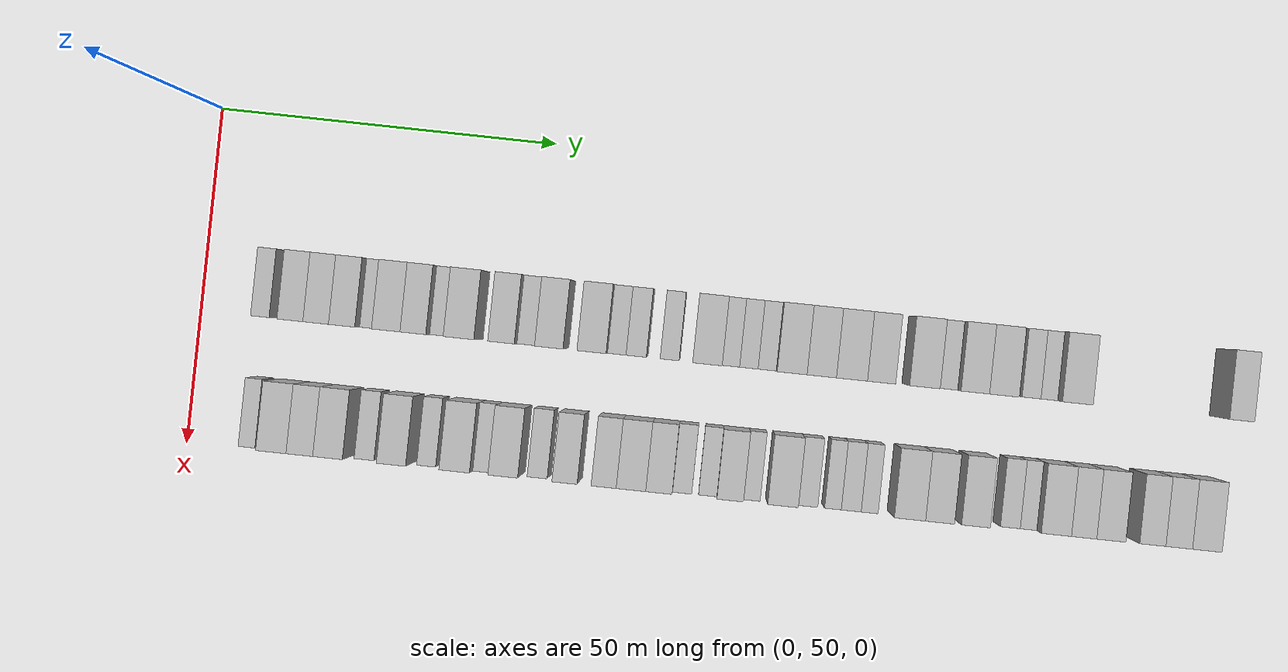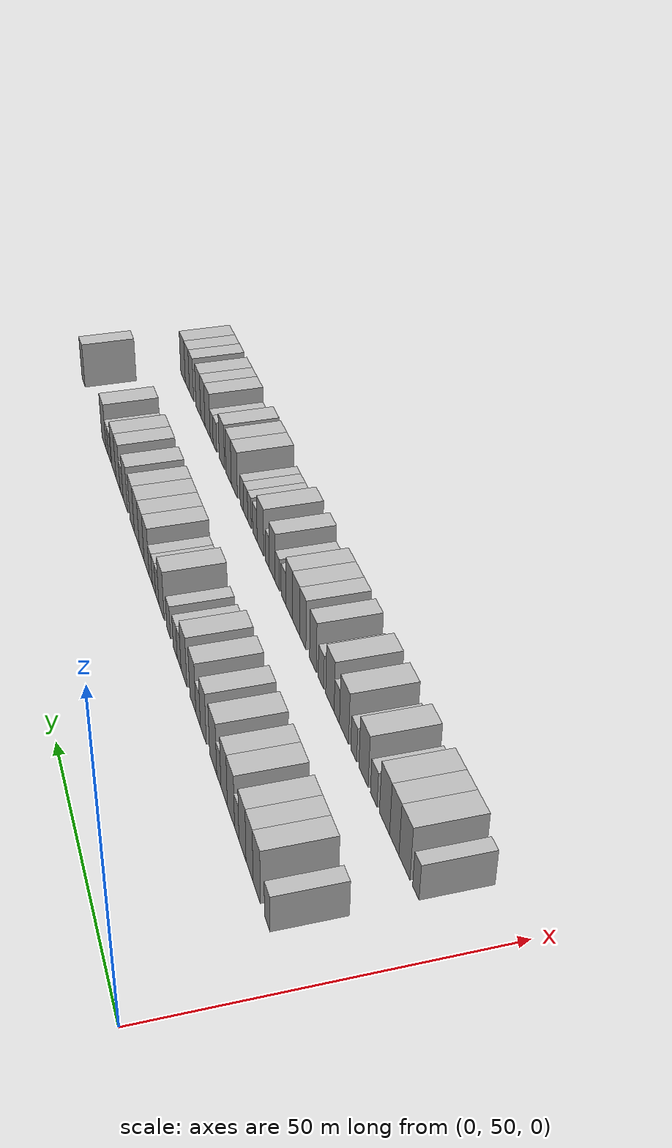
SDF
<sdf version="1.6">
 <world name="default">
  <model name="building_69">
   <static>1</static>
   <pose>25.0000 60.5563 0 0.000000 0.000000 0.000000</pose>
   <link name="link">
    <pose>0 0 3.00 0 0 0</pose>
    <collision name="collision"><geometry><box><size>10.0000 2.7041 6.0000</size></box></geometry></collision>
    <visual name="visual">
     <cast_shadows>0</cast_shadows>
     <geometry><box><size>10.0000 2.7041 6.0000</size></box></geometry>
     <material>
      <script>
       <uri>model://HANNAS_wall/materials/scripts</uri>
       <uri>model://HANNAS_wall/materials/textures</uri>
       <name>vrc/HANNAS_wall</name>
      </script>
     </material>
    </visual>
   </link>
  </model>
  <model name="building_70">
   <static>1</static>
   <pose>25.0000 65.7661 0 0.000000 0.000000 0.000000</pose>
   <link name="link">
    <pose>0 0 4.50 0 0 0</pose>
    <collision name="collision"><geometry><box><size>10.0000 3.7156 9.0000</size></box></geometry></collision>
    <visual name="visual">
     <cast_shadows>0</cast_shadows>
     <geometry><box><size>10.0000 3.7156 9.0000</size></box></geometry>
     <material>
      <script>
       <uri>model://HANNAS_wall/materials/scripts</uri>
       <uri>model://HANNAS_wall/materials/textures</uri>
       <name>vrc/HANNAS_wall</name>
      </script>
     </material>
    </visual>
   </link>
  </model>
  <model name="building_71">
   <static>1</static>
   <pose>25.0000 69.4646 0 0.000000 0.000000 0.000000</pose>
   <link name="link">
    <pose>0 0 4.50 0 0 0</pose>
    <collision name="collision"><geometry><box><size>10.0000 3.6813 9.0000</size></box></geometry></collision>
    <visual name="visual">
     <cast_shadows>0</cast_shadows>
     <geometry><box><size>10.0000 3.6813 9.0000</size></box></geometry>
     <material>
      <script>
       <uri>model://HANNAS_wall/materials/scripts</uri>
       <uri>model://HANNAS_wall/materials/textures</uri>
       <name>vrc/HANNAS_wall</name>
      </script>
     </material>
    </visual>
   </link>
  </model>
  <model name="building_72">
   <static>1</static>
   <pose>25.0000 73.1962 0 0.000000 0.000000 0.000000</pose>
   <link name="link">
    <pose>0 0 4.50 0 0 0</pose>
    <collision name="collision"><geometry><box><size>10.0000 3.7819 9.0000</size></box></geometry></collision>
    <visual name="visual">
     <cast_shadows>0</cast_shadows>
     <geometry><box><size>10.0000 3.7819 9.0000</size></box></geometry>
     <material>
      <script>
       <uri>model://HANNAS_wall/materials/scripts</uri>
       <uri>model://HANNAS_wall/materials/textures</uri>
       <name>vrc/HANNAS_wall</name>
      </script>
     </material>
    </visual>
   </link>
  </model>
  <model name="building_73">
   <static>1</static>
   <pose>25.0000 76.2872 0 0.000000 0.000000 0.000000</pose>
   <link name="link">
    <pose>0 0 3.00 0 0 0</pose>
    <collision name="collision"><geometry><box><size>10.0000 2.4002 6.0000</size></box></geometry></collision>
    <visual name="visual">
     <cast_shadows>0</cast_shadows>
     <geometry><box><size>10.0000 2.4002 6.0000</size></box></geometry>
     <material>
      <script>
       <uri>model://HANNAS_wall/materials/scripts</uri>
       <uri>model://HANNAS_wall/materials/textures</uri>
       <name>vrc/HANNAS_wall</name>
      </script>
     </material>
    </visual>
   </link>
  </model>
  <model name="building_74">
   <static>1</static>
   <pose>25.0000 79.5328 0 0.000000 0.000000 0.000000</pose>
   <link name="link">
    <pose>0 0 4.50 0 0 0</pose>
    <collision name="collision"><geometry><box><size>10.0000 4.0908 9.0000</size></box></geometry></collision>
    <visual name="visual">
     <cast_shadows>0</cast_shadows>
     <geometry><box><size>10.0000 4.0908 9.0000</size></box></geometry>
     <material>
      <script>
       <uri>model://HANNAS_wall/materials/scripts</uri>
       <uri>model://HANNAS_wall/materials/textures</uri>
       <name>vrc/HANNAS_wall</name>
      </script>
     </material>
    </visual>
   </link>
  </model>
  <model name="building_75">
   <static>1</static>
   <pose>25.0000 83.4289 0 0.000000 0.000000 0.000000</pose>
   <link name="link">
    <pose>0 0 4.50 0 0 0</pose>
    <collision name="collision"><geometry><box><size>10.0000 3.7014 9.0000</size></box></geometry></collision>
    <visual name="visual">
     <cast_shadows>0</cast_shadows>
     <geometry><box><size>10.0000 3.7014 9.0000</size></box></geometry>
     <material>
      <script>
       <uri>model://HANNAS_wall/materials/scripts</uri>
       <uri>model://HANNAS_wall/materials/textures</uri>
       <name>vrc/HANNAS_wall</name>
      </script>
     </material>
    </visual>
   </link>
  </model>
  <model name="building_76">
   <static>1</static>
   <pose>25.0000 86.5332 0 0.000000 0.000000 0.000000</pose>
   <link name="link">
    <pose>0 0 3.00 0 0 0</pose>
    <collision name="collision"><geometry><box><size>10.0000 2.5073 6.0000</size></box></geometry></collision>
    <visual name="visual">
     <cast_shadows>0</cast_shadows>
     <geometry><box><size>10.0000 2.5073 6.0000</size></box></geometry>
     <material>
      <script>
       <uri>model://HANNAS_wall/materials/scripts</uri>
       <uri>model://HANNAS_wall/materials/textures</uri>
       <name>vrc/HANNAS_wall</name>
      </script>
     </material>
    </visual>
   </link>
  </model>
  <model name="building_77">
   <static>1</static>
   <pose>25.0000 89.9837 0 0.000000 0.000000 0.000000</pose>
   <link name="link">
    <pose>0 0 4.50 0 0 0</pose>
    <collision name="collision"><geometry><box><size>10.0000 4.3937 9.0000</size></box></geometry></collision>
    <visual name="visual">
     <cast_shadows>0</cast_shadows>
     <geometry><box><size>10.0000 4.3937 9.0000</size></box></geometry>
     <material>
      <script>
       <uri>model://HANNAS_wall/materials/scripts</uri>
       <uri>model://HANNAS_wall/materials/textures</uri>
       <name>vrc/HANNAS_wall</name>
      </script>
     </material>
    </visual>
   </link>
  </model>
  <model name="building_78">
   <static>1</static>
   <pose>25.0000 96.0907 0 0.000000 0.000000 0.000000</pose>
   <link name="link">
    <pose>0 0 4.50 0 0 0</pose>
    <collision name="collision"><geometry><box><size>10.0000 3.8204 9.0000</size></box></geometry></collision>
    <visual name="visual">
     <cast_shadows>0</cast_shadows>
     <geometry><box><size>10.0000 3.8204 9.0000</size></box></geometry>
     <material>
      <script>
       <uri>model://HANNAS_wall/materials/scripts</uri>
       <uri>model://HANNAS_wall/materials/textures</uri>
       <name>vrc/HANNAS_wall</name>
      </script>
     </material>
    </visual>
   </link>
  </model>
  <model name="building_79">
   <static>1</static>
   <pose>25.0000 99.4555 0 0.000000 0.000000 0.000000</pose>
   <link name="link">
    <pose>0 0 3.00 0 0 0</pose>
    <collision name="collision"><geometry><box><size>10.0000 2.9091 6.0000</size></box></geometry></collision>
    <visual name="visual">
     <cast_shadows>0</cast_shadows>
     <geometry><box><size>10.0000 2.9091 6.0000</size></box></geometry>
     <material>
      <script>
       <uri>model://HANNAS_wall/materials/scripts</uri>
       <uri>model://HANNAS_wall/materials/textures</uri>
       <name>vrc/HANNAS_wall</name>
      </script>
     </material>
    </visual>
   </link>
  </model>
  <model name="building_80">
   <static>1</static>
   <pose>25.0000 102.9547 0 0.000000 0.000000 0.000000</pose>
   <link name="link">
    <pose>0 0 4.50 0 0 0</pose>
    <collision name="collision"><geometry><box><size>10.0000 4.0892 9.0000</size></box></geometry></collision>
    <visual name="visual">
     <cast_shadows>0</cast_shadows>
     <geometry><box><size>10.0000 4.0892 9.0000</size></box></geometry>
     <material>
      <script>
       <uri>model://HANNAS_wall/materials/scripts</uri>
       <uri>model://HANNAS_wall/materials/textures</uri>
       <name>vrc/HANNAS_wall</name>
      </script>
     </material>
    </visual>
   </link>
  </model>
  <model name="building_81">
   <static>1</static>
   <pose>25.0000 109.0985 0 0.000000 0.000000 0.000000</pose>
   <link name="link">
    <pose>0 0 4.50 0 0 0</pose>
    <collision name="collision"><geometry><box><size>10.0000 4.1983 9.0000</size></box></geometry></collision>
    <visual name="visual">
     <cast_shadows>0</cast_shadows>
     <geometry><box><size>10.0000 4.1983 9.0000</size></box></geometry>
     <material>
      <script>
       <uri>model://HANNAS_wall/materials/scripts</uri>
       <uri>model://HANNAS_wall/materials/textures</uri>
       <name>vrc/HANNAS_wall</name>
      </script>
     </material>
    </visual>
   </link>
  </model>
  <model name="building_82">
   <static>1</static>
   <pose>25.0000 112.5447 0 0.000000 0.000000 0.000000</pose>
   <link name="link">
    <pose>0 0 3.00 0 0 0</pose>
    <collision name="collision"><geometry><box><size>10.0000 2.6942 6.0000</size></box></geometry></collision>
    <visual name="visual">
     <cast_shadows>0</cast_shadows>
     <geometry><box><size>10.0000 2.6942 6.0000</size></box></geometry>
     <material>
      <script>
       <uri>model://HANNAS_wall/materials/scripts</uri>
       <uri>model://HANNAS_wall/materials/textures</uri>
       <name>vrc/HANNAS_wall</name>
      </script>
     </material>
    </visual>
   </link>
  </model>
  <model name="building_83">
   <static>1</static>
   <pose>25.0000 115.3727 0 0.000000 0.000000 0.000000</pose>
   <link name="link">
    <pose>0 0 3.00 0 0 0</pose>
    <collision name="collision"><geometry><box><size>10.0000 2.9618 6.0000</size></box></geometry></collision>
    <visual name="visual">
     <cast_shadows>0</cast_shadows>
     <geometry><box><size>10.0000 2.9618 6.0000</size></box></geometry>
     <material>
      <script>
       <uri>model://HANNAS_wall/materials/scripts</uri>
       <uri>model://HANNAS_wall/materials/textures</uri>
       <name>vrc/HANNAS_wall</name>
      </script>
     </material>
    </visual>
   </link>
  </model>
  <model name="building_84">
   <static>1</static>
   <pose>25.0000 120.2411 0 0.000000 0.000000 0.000000</pose>
   <link name="link">
    <pose>0 0 3.00 0 0 0</pose>
    <collision name="collision"><geometry><box><size>10.0000 2.7749 6.0000</size></box></geometry></collision>
    <visual name="visual">
     <cast_shadows>0</cast_shadows>
     <geometry><box><size>10.0000 2.7749 6.0000</size></box></geometry>
     <material>
      <script>
       <uri>model://HANNAS_wall/materials/scripts</uri>
       <uri>model://HANNAS_wall/materials/textures</uri>
       <name>vrc/HANNAS_wall</name>
      </script>
     </material>
    </visual>
   </link>
  </model>
  <model name="building_85">
   <static>1</static>
   <pose>25.0000 125.7526 0 0.000000 0.000000 0.000000</pose>
   <link name="link">
    <pose>0 0 4.50 0 0 0</pose>
    <collision name="collision"><geometry><box><size>10.0000 4.2481 9.0000</size></box></geometry></collision>
    <visual name="visual">
     <cast_shadows>0</cast_shadows>
     <geometry><box><size>10.0000 4.2481 9.0000</size></box></geometry>
     <material>
      <script>
       <uri>model://HANNAS_wall/materials/scripts</uri>
       <uri>model://HANNAS_wall/materials/textures</uri>
       <name>vrc/HANNAS_wall</name>
      </script>
     </material>
    </visual>
   </link>
  </model>
  <model name="building_86">
   <static>1</static>
   <pose>25.0000 129.1577 0 0.000000 0.000000 0.000000</pose>
   <link name="link">
    <pose>0 0 3.00 0 0 0</pose>
    <collision name="collision"><geometry><box><size>10.0000 2.5620 6.0000</size></box></geometry></collision>
    <visual name="visual">
     <cast_shadows>0</cast_shadows>
     <geometry><box><size>10.0000 2.5620 6.0000</size></box></geometry>
     <material>
      <script>
       <uri>model://HANNAS_wall/materials/scripts</uri>
       <uri>model://HANNAS_wall/materials/textures</uri>
       <name>vrc/HANNAS_wall</name>
      </script>
     </material>
    </visual>
   </link>
  </model>
  <model name="building_87">
   <static>1</static>
   <pose>25.0000 131.7862 0 0.000000 0.000000 0.000000</pose>
   <link name="link">
    <pose>0 0 3.00 0 0 0</pose>
    <collision name="collision"><geometry><box><size>10.0000 2.6950 6.0000</size></box></geometry></collision>
    <visual name="visual">
     <cast_shadows>0</cast_shadows>
     <geometry><box><size>10.0000 2.6950 6.0000</size></box></geometry>
     <material>
      <script>
       <uri>model://HANNAS_wall/materials/scripts</uri>
       <uri>model://HANNAS_wall/materials/textures</uri>
       <name>vrc/HANNAS_wall</name>
      </script>
     </material>
    </visual>
   </link>
  </model>
  <model name="building_88">
   <static>1</static>
   <pose>25.0000 134.4603 0 0.000000 0.000000 0.000000</pose>
   <link name="link">
    <pose>0 0 3.00 0 0 0</pose>
    <collision name="collision"><geometry><box><size>10.0000 2.6532 6.0000</size></box></geometry></collision>
    <visual name="visual">
     <cast_shadows>0</cast_shadows>
     <geometry><box><size>10.0000 2.6532 6.0000</size></box></geometry>
     <material>
      <script>
       <uri>model://HANNAS_wall/materials/scripts</uri>
       <uri>model://HANNAS_wall/materials/textures</uri>
       <name>vrc/HANNAS_wall</name>
      </script>
     </material>
    </visual>
   </link>
  </model>
  <model name="building_89">
   <static>1</static>
   <pose>25.0000 137.9294 0 0.000000 0.000000 0.000000</pose>
   <link name="link">
    <pose>0 0 4.50 0 0 0</pose>
    <collision name="collision"><geometry><box><size>10.0000 4.2849 9.0000</size></box></geometry></collision>
    <visual name="visual">
     <cast_shadows>0</cast_shadows>
     <geometry><box><size>10.0000 4.2849 9.0000</size></box></geometry>
     <material>
      <script>
       <uri>model://HANNAS_wall/materials/scripts</uri>
       <uri>model://HANNAS_wall/materials/textures</uri>
       <name>vrc/HANNAS_wall</name>
      </script>
     </material>
    </visual>
   </link>
  </model>
  <model name="building_90">
   <static>1</static>
   <pose>25.0000 142.1839 0 0.000000 0.000000 0.000000</pose>
   <link name="link">
    <pose>0 0 4.50 0 0 0</pose>
    <collision name="collision"><geometry><box><size>10.0000 4.2241 9.0000</size></box></geometry></collision>
    <visual name="visual">
     <cast_shadows>0</cast_shadows>
     <geometry><box><size>10.0000 4.2241 9.0000</size></box></geometry>
     <material>
      <script>
       <uri>model://HANNAS_wall/materials/scripts</uri>
       <uri>model://HANNAS_wall/materials/textures</uri>
       <name>vrc/HANNAS_wall</name>
      </script>
     </material>
    </visual>
   </link>
  </model>
  <model name="building_91">
   <static>1</static>
   <pose>25.0000 146.5268 0 0.000000 0.000000 0.000000</pose>
   <link name="link">
    <pose>0 0 4.50 0 0 0</pose>
    <collision name="collision"><geometry><box><size>10.0000 4.4617 9.0000</size></box></geometry></collision>
    <visual name="visual">
     <cast_shadows>0</cast_shadows>
     <geometry><box><size>10.0000 4.4617 9.0000</size></box></geometry>
     <material>
      <script>
       <uri>model://HANNAS_wall/materials/scripts</uri>
       <uri>model://HANNAS_wall/materials/textures</uri>
       <name>vrc/HANNAS_wall</name>
      </script>
     </material>
    </visual>
   </link>
  </model>
  <model name="building_92">
   <static>1</static>
   <pose>25.0000 150.7841 0 0.000000 0.000000 0.000000</pose>
   <link name="link">
    <pose>0 0 4.50 0 0 0</pose>
    <collision name="collision"><geometry><box><size>10.0000 4.0531 9.0000</size></box></geometry></collision>
    <visual name="visual">
     <cast_shadows>0</cast_shadows>
     <geometry><box><size>10.0000 4.0531 9.0000</size></box></geometry>
     <material>
      <script>
       <uri>model://HANNAS_wall/materials/scripts</uri>
       <uri>model://HANNAS_wall/materials/textures</uri>
       <name>vrc/HANNAS_wall</name>
      </script>
     </material>
    </visual>
   </link>
  </model>
  <model name="building_93">
   <static>1</static>
   <pose>25.0000 157.0103 0 0.000000 0.000000 0.000000</pose>
   <link name="link">
    <pose>0 0 4.50 0 0 0</pose>
    <collision name="collision"><geometry><box><size>10.0000 4.3993 9.0000</size></box></geometry></collision>
    <visual name="visual">
     <cast_shadows>0</cast_shadows>
     <geometry><box><size>10.0000 4.3993 9.0000</size></box></geometry>
     <material>
      <script>
       <uri>model://HANNAS_wall/materials/scripts</uri>
       <uri>model://HANNAS_wall/materials/textures</uri>
       <name>vrc/HANNAS_wall</name>
      </script>
     </material>
    </visual>
   </link>
  </model>
  <model name="building_94">
   <static>1</static>
   <pose>25.0000 160.7069 0 0.000000 0.000000 0.000000</pose>
   <link name="link">
    <pose>0 0 3.00 0 0 0</pose>
    <collision name="collision"><geometry><box><size>10.0000 2.9938 6.0000</size></box></geometry></collision>
    <visual name="visual">
     <cast_shadows>0</cast_shadows>
     <geometry><box><size>10.0000 2.9938 6.0000</size></box></geometry>
     <material>
      <script>
       <uri>model://HANNAS_wall/materials/scripts</uri>
       <uri>model://HANNAS_wall/materials/textures</uri>
       <name>vrc/HANNAS_wall</name>
      </script>
     </material>
    </visual>
   </link>
  </model>
  <model name="building_95">
   <static>1</static>
   <pose>25.0000 164.2515 0 0.000000 0.000000 0.000000</pose>
   <link name="link">
    <pose>0 0 4.50 0 0 0</pose>
    <collision name="collision"><geometry><box><size>10.0000 4.0954 9.0000</size></box></geometry></collision>
    <visual name="visual">
     <cast_shadows>0</cast_shadows>
     <geometry><box><size>10.0000 4.0954 9.0000</size></box></geometry>
     <material>
      <script>
       <uri>model://HANNAS_wall/materials/scripts</uri>
       <uri>model://HANNAS_wall/materials/textures</uri>
       <name>vrc/HANNAS_wall</name>
      </script>
     </material>
    </visual>
   </link>
  </model>
  <model name="building_96">
   <static>1</static>
   <pose>25.0000 168.4405 0 0.000000 0.000000 0.000000</pose>
   <link name="link">
    <pose>0 0 4.50 0 0 0</pose>
    <collision name="collision"><geometry><box><size>10.0000 4.2827 9.0000</size></box></geometry></collision>
    <visual name="visual">
     <cast_shadows>0</cast_shadows>
     <geometry><box><size>10.0000 4.2827 9.0000</size></box></geometry>
     <material>
      <script>
       <uri>model://HANNAS_wall/materials/scripts</uri>
       <uri>model://HANNAS_wall/materials/textures</uri>
       <name>vrc/HANNAS_wall</name>
      </script>
     </material>
    </visual>
   </link>
  </model>
  <model name="building_97">
   <static>1</static>
   <pose>25.0000 172.9582 0 0.000000 0.000000 0.000000</pose>
   <link name="link">
    <pose>0 0 3.00 0 0 0</pose>
    <collision name="collision"><geometry><box><size>10.0000 2.7528 6.0000</size></box></geometry></collision>
    <visual name="visual">
     <cast_shadows>0</cast_shadows>
     <geometry><box><size>10.0000 2.7528 6.0000</size></box></geometry>
     <material>
      <script>
       <uri>model://HANNAS_wall/materials/scripts</uri>
       <uri>model://HANNAS_wall/materials/textures</uri>
       <name>vrc/HANNAS_wall</name>
      </script>
     </material>
    </visual>
   </link>
  </model>
  <model name="building_98">
   <static>1</static>
   <pose>25.0000 175.5542 0 0.000000 0.000000 0.000000</pose>
   <link name="link">
    <pose>0 0 3.00 0 0 0</pose>
    <collision name="collision"><geometry><box><size>10.0000 2.4391 6.0000</size></box></geometry></collision>
    <visual name="visual">
     <cast_shadows>0</cast_shadows>
     <geometry><box><size>10.0000 2.4391 6.0000</size></box></geometry>
     <material>
      <script>
       <uri>model://HANNAS_wall/materials/scripts</uri>
       <uri>model://HANNAS_wall/materials/textures</uri>
       <name>vrc/HANNAS_wall</name>
      </script>
     </material>
    </visual>
   </link>
  </model>
  <model name="building_99">
   <static>1</static>
   <pose>25.0000 178.9804 0 0.000000 0.000000 0.000000</pose>
   <link name="link">
    <pose>0 0 4.50 0 0 0</pose>
    <collision name="collision"><geometry><box><size>10.0000 4.4134 9.0000</size></box></geometry></collision>
    <visual name="visual">
     <cast_shadows>0</cast_shadows>
     <geometry><box><size>10.0000 4.4134 9.0000</size></box></geometry>
     <material>
      <script>
       <uri>model://HANNAS_wall/materials/scripts</uri>
       <uri>model://HANNAS_wall/materials/textures</uri>
       <name>vrc/HANNAS_wall</name>
      </script>
     </material>
    </visual>
   </link>
  </model>
  <model name="building_100">
   <static>1</static>
   <pose>25.0000 202.5988 0 0.000000 0.000000 0.000000</pose>
   <link name="link">
    <pose>0 0 4.50 0 0 0</pose>
    <collision name="collision"><geometry><box><size>10.0000 3.6078 9.0000</size></box></geometry></collision>
    <visual name="visual">
     <cast_shadows>0</cast_shadows>
     <geometry><box><size>10.0000 3.6078 9.0000</size></box></geometry>
     <material>
      <script>
       <uri>model://HANNAS_wall/materials/scripts</uri>
       <uri>model://HANNAS_wall/materials/textures</uri>
       <name>vrc/HANNAS_wall</name>
      </script>
     </material>
    </visual>
   </link>
  </model>
  <model name="building_167">
   <static>1</static>
   <pose>44.0000 60.6185 0 0.000000 0.000000 0.000000</pose>
   <link name="link">
    <pose>0 0 3.00 0 0 0</pose>
    <collision name="collision"><geometry><box><size>10.0000 2.4474 6.0000</size></box></geometry></collision>
    <visual name="visual">
     <cast_shadows>0</cast_shadows>
     <geometry><box><size>10.0000 2.4474 6.0000</size></box></geometry>
     <material>
      <script>
       <uri>model://HANNAS_wall/materials/scripts</uri>
       <uri>model://HANNAS_wall/materials/textures</uri>
       <name>vrc/HANNAS_wall</name>
      </script>
     </material>
    </visual>
   </link>
  </model>
  <model name="building_168">
   <static>1</static>
   <pose>44.0000 65.0229 0 0.000000 0.000000 0.000000</pose>
   <link name="link">
    <pose>0 0 4.50 0 0 0</pose>
    <collision name="collision"><geometry><box><size>10.0000 4.3615 9.0000</size></box></geometry></collision>
    <visual name="visual">
     <cast_shadows>0</cast_shadows>
     <geometry><box><size>10.0000 4.3615 9.0000</size></box></geometry>
     <material>
      <script>
       <uri>model://HANNAS_wall/materials/scripts</uri>
       <uri>model://HANNAS_wall/materials/textures</uri>
       <name>vrc/HANNAS_wall</name>
      </script>
     </material>
    </visual>
   </link>
  </model>
  <model name="building_169">
   <static>1</static>
   <pose>44.0000 69.1203 0 0.000000 0.000000 0.000000</pose>
   <link name="link">
    <pose>0 0 4.50 0 0 0</pose>
    <collision name="collision"><geometry><box><size>10.0000 3.8331 9.0000</size></box></geometry></collision>
    <visual name="visual">
     <cast_shadows>0</cast_shadows>
     <geometry><box><size>10.0000 3.8331 9.0000</size></box></geometry>
     <material>
      <script>
       <uri>model://HANNAS_wall/materials/scripts</uri>
       <uri>model://HANNAS_wall/materials/textures</uri>
       <name>vrc/HANNAS_wall</name>
      </script>
     </material>
    </visual>
   </link>
  </model>
  <model name="building_170">
   <static>1</static>
   <pose>44.0000 73.1661 0 0.000000 0.000000 0.000000</pose>
   <link name="link">
    <pose>0 0 4.50 0 0 0</pose>
    <collision name="collision"><geometry><box><size>10.0000 4.2587 9.0000</size></box></geometry></collision>
    <visual name="visual">
     <cast_shadows>0</cast_shadows>
     <geometry><box><size>10.0000 4.2587 9.0000</size></box></geometry>
     <material>
      <script>
       <uri>model://HANNAS_wall/materials/scripts</uri>
       <uri>model://HANNAS_wall/materials/textures</uri>
       <name>vrc/HANNAS_wall</name>
      </script>
     </material>
    </visual>
   </link>
  </model>
  <model name="building_171">
   <static>1</static>
   <pose>44.0000 77.7386 0 0.000000 0.000000 0.000000</pose>
   <link name="link">
    <pose>0 0 3.00 0 0 0</pose>
    <collision name="collision"><geometry><box><size>10.0000 2.8862 6.0000</size></box></geometry></collision>
    <visual name="visual">
     <cast_shadows>0</cast_shadows>
     <geometry><box><size>10.0000 2.8862 6.0000</size></box></geometry>
     <material>
      <script>
       <uri>model://HANNAS_wall/materials/scripts</uri>
       <uri>model://HANNAS_wall/materials/textures</uri>
       <name>vrc/HANNAS_wall</name>
      </script>
     </material>
    </visual>
   </link>
  </model>
  <model name="building_172">
   <static>1</static>
   <pose>44.0000 82.2848 0 0.000000 0.000000 0.000000</pose>
   <link name="link">
    <pose>0 0 4.50 0 0 0</pose>
    <collision name="collision"><geometry><box><size>10.0000 4.2062 9.0000</size></box></geometry></collision>
    <visual name="visual">
     <cast_shadows>0</cast_shadows>
     <geometry><box><size>10.0000 4.2062 9.0000</size></box></geometry>
     <material>
      <script>
       <uri>model://HANNAS_wall/materials/scripts</uri>
       <uri>model://HANNAS_wall/materials/textures</uri>
       <name>vrc/HANNAS_wall</name>
      </script>
     </material>
    </visual>
   </link>
  </model>
  <model name="building_173">
   <static>1</static>
   <pose>44.0000 86.7748 0 0.000000 0.000000 0.000000</pose>
   <link name="link">
    <pose>0 0 3.00 0 0 0</pose>
    <collision name="collision"><geometry><box><size>10.0000 2.7738 6.0000</size></box></geometry></collision>
    <visual name="visual">
     <cast_shadows>0</cast_shadows>
     <geometry><box><size>10.0000 2.7738 6.0000</size></box></geometry>
     <material>
      <script>
       <uri>model://HANNAS_wall/materials/scripts</uri>
       <uri>model://HANNAS_wall/materials/textures</uri>
       <name>vrc/HANNAS_wall</name>
      </script>
     </material>
    </visual>
   </link>
  </model>
  <model name="building_174">
   <static>1</static>
   <pose>44.0000 91.3615 0 0.000000 0.000000 0.000000</pose>
   <link name="link">
    <pose>0 0 4.50 0 0 0</pose>
    <collision name="collision"><geometry><box><size>10.0000 4.3996 9.0000</size></box></geometry></collision>
    <visual name="visual">
     <cast_shadows>0</cast_shadows>
     <geometry><box><size>10.0000 4.3996 9.0000</size></box></geometry>
     <material>
      <script>
       <uri>model://HANNAS_wall/materials/scripts</uri>
       <uri>model://HANNAS_wall/materials/textures</uri>
       <name>vrc/HANNAS_wall</name>
      </script>
     </material>
    </visual>
   </link>
  </model>
  <model name="building_175">
   <static>1</static>
   <pose>44.0000 94.8820 0 0.000000 0.000000 0.000000</pose>
   <link name="link">
    <pose>0 0 3.00 0 0 0</pose>
    <collision name="collision"><geometry><box><size>10.0000 2.6413 6.0000</size></box></geometry></collision>
    <visual name="visual">
     <cast_shadows>0</cast_shadows>
     <geometry><box><size>10.0000 2.6413 6.0000</size></box></geometry>
     <material>
      <script>
       <uri>model://HANNAS_wall/materials/scripts</uri>
       <uri>model://HANNAS_wall/materials/textures</uri>
       <name>vrc/HANNAS_wall</name>
      </script>
     </material>
    </visual>
   </link>
  </model>
  <model name="building_176">
   <static>1</static>
   <pose>44.0000 98.3437 0 0.000000 0.000000 0.000000</pose>
   <link name="link">
    <pose>0 0 4.50 0 0 0</pose>
    <collision name="collision"><geometry><box><size>10.0000 4.2821 9.0000</size></box></geometry></collision>
    <visual name="visual">
     <cast_shadows>0</cast_shadows>
     <geometry><box><size>10.0000 4.2821 9.0000</size></box></geometry>
     <material>
      <script>
       <uri>model://HANNAS_wall/materials/scripts</uri>
       <uri>model://HANNAS_wall/materials/textures</uri>
       <name>vrc/HANNAS_wall</name>
      </script>
     </material>
    </visual>
   </link>
  </model>
  <model name="building_177">
   <static>1</static>
   <pose>44.0000 102.9449 0 0.000000 0.000000 0.000000</pose>
   <link name="link">
    <pose>0 0 3.00 0 0 0</pose>
    <collision name="collision"><geometry><box><size>10.0000 2.9204 6.0000</size></box></geometry></collision>
    <visual name="visual">
     <cast_shadows>0</cast_shadows>
     <geometry><box><size>10.0000 2.9204 6.0000</size></box></geometry>
     <material>
      <script>
       <uri>model://HANNAS_wall/materials/scripts</uri>
       <uri>model://HANNAS_wall/materials/textures</uri>
       <name>vrc/HANNAS_wall</name>
      </script>
     </material>
    </visual>
   </link>
  </model>
  <model name="building_178">
   <static>1</static>
   <pose>44.0000 107.2214 0 0.000000 0.000000 0.000000</pose>
   <link name="link">
    <pose>0 0 4.50 0 0 0</pose>
    <collision name="collision"><geometry><box><size>10.0000 3.6325 9.0000</size></box></geometry></collision>
    <visual name="visual">
     <cast_shadows>0</cast_shadows>
     <geometry><box><size>10.0000 3.6325 9.0000</size></box></geometry>
     <material>
      <script>
       <uri>model://HANNAS_wall/materials/scripts</uri>
       <uri>model://HANNAS_wall/materials/textures</uri>
       <name>vrc/HANNAS_wall</name>
      </script>
     </material>
    </visual>
   </link>
  </model>
  <model name="building_179">
   <static>1</static>
   <pose>44.0000 112.8409 0 0.000000 0.000000 0.000000</pose>
   <link name="link">
    <pose>0 0 4.50 0 0 0</pose>
    <collision name="collision"><geometry><box><size>10.0000 3.6065 9.0000</size></box></geometry></collision>
    <visual name="visual">
     <cast_shadows>0</cast_shadows>
     <geometry><box><size>10.0000 3.6065 9.0000</size></box></geometry>
     <material>
      <script>
       <uri>model://HANNAS_wall/materials/scripts</uri>
       <uri>model://HANNAS_wall/materials/textures</uri>
       <name>vrc/HANNAS_wall</name>
      </script>
     </material>
    </visual>
   </link>
  </model>
  <model name="building_180">
   <static>1</static>
   <pose>44.0000 116.7650 0 0.000000 0.000000 0.000000</pose>
   <link name="link">
    <pose>0 0 4.50 0 0 0</pose>
    <collision name="collision"><geometry><box><size>10.0000 4.2419 9.0000</size></box></geometry></collision>
    <visual name="visual">
     <cast_shadows>0</cast_shadows>
     <geometry><box><size>10.0000 4.2419 9.0000</size></box></geometry>
     <material>
      <script>
       <uri>model://HANNAS_wall/materials/scripts</uri>
       <uri>model://HANNAS_wall/materials/textures</uri>
       <name>vrc/HANNAS_wall</name>
      </script>
     </material>
    </visual>
   </link>
  </model>
  <model name="building_181">
   <static>1</static>
   <pose>44.0000 120.7814 0 0.000000 0.000000 0.000000</pose>
   <link name="link">
    <pose>0 0 4.50 0 0 0</pose>
    <collision name="collision"><geometry><box><size>10.0000 3.7908 9.0000</size></box></geometry></collision>
    <visual name="visual">
     <cast_shadows>0</cast_shadows>
     <geometry><box><size>10.0000 3.7908 9.0000</size></box></geometry>
     <material>
      <script>
       <uri>model://HANNAS_wall/materials/scripts</uri>
       <uri>model://HANNAS_wall/materials/textures</uri>
       <name>vrc/HANNAS_wall</name>
      </script>
     </material>
    </visual>
   </link>
  </model>
  <model name="building_182">
   <static>1</static>
   <pose>44.0000 124.0664 0 0.000000 0.000000 0.000000</pose>
   <link name="link">
    <pose>0 0 3.00 0 0 0</pose>
    <collision name="collision"><geometry><box><size>10.0000 2.7793 6.0000</size></box></geometry></collision>
    <visual name="visual">
     <cast_shadows>0</cast_shadows>
     <geometry><box><size>10.0000 2.7793 6.0000</size></box></geometry>
     <material>
      <script>
       <uri>model://HANNAS_wall/materials/scripts</uri>
       <uri>model://HANNAS_wall/materials/textures</uri>
       <name>vrc/HANNAS_wall</name>
      </script>
     </material>
    </visual>
   </link>
  </model>
  <model name="building_183">
   <static>1</static>
   <pose>44.0000 127.7925 0 0.000000 0.000000 0.000000</pose>
   <link name="link">
    <pose>0 0 3.00 0 0 0</pose>
    <collision name="collision"><geometry><box><size>10.0000 2.6728 6.0000</size></box></geometry></collision>
    <visual name="visual">
     <cast_shadows>0</cast_shadows>
     <geometry><box><size>10.0000 2.6728 6.0000</size></box></geometry>
     <material>
      <script>
       <uri>model://HANNAS_wall/materials/scripts</uri>
       <uri>model://HANNAS_wall/materials/textures</uri>
       <name>vrc/HANNAS_wall</name>
      </script>
     </material>
    </visual>
   </link>
  </model>
  <model name="building_184">
   <static>1</static>
   <pose>44.0000 131.0370 0 0.000000 0.000000 0.000000</pose>
   <link name="link">
    <pose>0 0 4.50 0 0 0</pose>
    <collision name="collision"><geometry><box><size>10.0000 3.8164 9.0000</size></box></geometry></collision>
    <visual name="visual">
     <cast_shadows>0</cast_shadows>
     <geometry><box><size>10.0000 3.8164 9.0000</size></box></geometry>
     <material>
      <script>
       <uri>model://HANNAS_wall/materials/scripts</uri>
       <uri>model://HANNAS_wall/materials/textures</uri>
       <name>vrc/HANNAS_wall</name>
      </script>
     </material>
    </visual>
   </link>
  </model>
  <model name="building_185">
   <static>1</static>
   <pose>44.0000 134.1872 0 0.000000 0.000000 0.000000</pose>
   <link name="link">
    <pose>0 0 3.00 0 0 0</pose>
    <collision name="collision"><geometry><box><size>10.0000 2.4840 6.0000</size></box></geometry></collision>
    <visual name="visual">
     <cast_shadows>0</cast_shadows>
     <geometry><box><size>10.0000 2.4840 6.0000</size></box></geometry>
     <material>
      <script>
       <uri>model://HANNAS_wall/materials/scripts</uri>
       <uri>model://HANNAS_wall/materials/textures</uri>
       <name>vrc/HANNAS_wall</name>
      </script>
     </material>
    </visual>
   </link>
  </model>
  <model name="building_186">
   <static>1</static>
   <pose>44.0000 138.6260 0 0.000000 0.000000 0.000000</pose>
   <link name="link">
    <pose>0 0 4.50 0 0 0</pose>
    <collision name="collision"><geometry><box><size>10.0000 4.3936 9.0000</size></box></geometry></collision>
    <visual name="visual">
     <cast_shadows>0</cast_shadows>
     <geometry><box><size>10.0000 4.3936 9.0000</size></box></geometry>
     <material>
      <script>
       <uri>model://HANNAS_wall/materials/scripts</uri>
       <uri>model://HANNAS_wall/materials/textures</uri>
       <name>vrc/HANNAS_wall</name>
      </script>
     </material>
    </visual>
   </link>
  </model>
  <model name="building_187">
   <static>1</static>
   <pose>44.0000 142.3214 0 0.000000 0.000000 0.000000</pose>
   <link name="link">
    <pose>0 0 3.00 0 0 0</pose>
    <collision name="collision"><geometry><box><size>10.0000 2.9973 6.0000</size></box></geometry></collision>
    <visual name="visual">
     <cast_shadows>0</cast_shadows>
     <geometry><box><size>10.0000 2.9973 6.0000</size></box></geometry>
     <material>
      <script>
       <uri>model://HANNAS_wall/materials/scripts</uri>
       <uri>model://HANNAS_wall/materials/textures</uri>
       <name>vrc/HANNAS_wall</name>
      </script>
     </material>
    </visual>
   </link>
  </model>
  <model name="building_188">
   <static>1</static>
   <pose>44.0000 146.0321 0 0.000000 0.000000 0.000000</pose>
   <link name="link">
    <pose>0 0 3.00 0 0 0</pose>
    <collision name="collision"><geometry><box><size>10.0000 2.4241 6.0000</size></box></geometry></collision>
    <visual name="visual">
     <cast_shadows>0</cast_shadows>
     <geometry><box><size>10.0000 2.4241 6.0000</size></box></geometry>
     <material>
      <script>
       <uri>model://HANNAS_wall/materials/scripts</uri>
       <uri>model://HANNAS_wall/materials/textures</uri>
       <name>vrc/HANNAS_wall</name>
      </script>
     </material>
    </visual>
   </link>
  </model>
  <model name="building_189">
   <static>1</static>
   <pose>44.0000 148.6930 0 0.000000 0.000000 0.000000</pose>
   <link name="link">
    <pose>0 0 3.00 0 0 0</pose>
    <collision name="collision"><geometry><box><size>10.0000 2.8976 6.0000</size></box></geometry></collision>
    <visual name="visual">
     <cast_shadows>0</cast_shadows>
     <geometry><box><size>10.0000 2.8976 6.0000</size></box></geometry>
     <material>
      <script>
       <uri>model://HANNAS_wall/materials/scripts</uri>
       <uri>model://HANNAS_wall/materials/textures</uri>
       <name>vrc/HANNAS_wall</name>
      </script>
     </material>
    </visual>
   </link>
  </model>
  <model name="building_190">
   <static>1</static>
   <pose>44.0000 151.3780 0 0.000000 0.000000 0.000000</pose>
   <link name="link">
    <pose>0 0 3.00 0 0 0</pose>
    <collision name="collision"><geometry><box><size>10.0000 2.4724 6.0000</size></box></geometry></collision>
    <visual name="visual">
     <cast_shadows>0</cast_shadows>
     <geometry><box><size>10.0000 2.4724 6.0000</size></box></geometry>
     <material>
      <script>
       <uri>model://HANNAS_wall/materials/scripts</uri>
       <uri>model://HANNAS_wall/materials/textures</uri>
       <name>vrc/HANNAS_wall</name>
      </script>
     </material>
    </visual>
   </link>
  </model>
  <model name="building_191">
   <static>1</static>
   <pose>44.0000 156.8596 0 0.000000 0.000000 0.000000</pose>
   <link name="link">
    <pose>0 0 4.50 0 0 0</pose>
    <collision name="collision"><geometry><box><size>10.0000 4.4910 9.0000</size></box></geometry></collision>
    <visual name="visual">
     <cast_shadows>0</cast_shadows>
     <geometry><box><size>10.0000 4.4910 9.0000</size></box></geometry>
     <material>
      <script>
       <uri>model://HANNAS_wall/materials/scripts</uri>
       <uri>model://HANNAS_wall/materials/textures</uri>
       <name>vrc/HANNAS_wall</name>
      </script>
     </material>
    </visual>
   </link>
  </model>
  <model name="building_192">
   <static>1</static>
   <pose>44.0000 161.1917 0 0.000000 0.000000 0.000000</pose>
   <link name="link">
    <pose>0 0 4.50 0 0 0</pose>
    <collision name="collision"><geometry><box><size>10.0000 4.1732 9.0000</size></box></geometry></collision>
    <visual name="visual">
     <cast_shadows>0</cast_shadows>
     <geometry><box><size>10.0000 4.1732 9.0000</size></box></geometry>
     <material>
      <script>
       <uri>model://HANNAS_wall/materials/scripts</uri>
       <uri>model://HANNAS_wall/materials/textures</uri>
       <name>vrc/HANNAS_wall</name>
      </script>
     </material>
    </visual>
   </link>
  </model>
  <model name="building_193">
   <static>1</static>
   <pose>44.0000 166.3512 0 0.000000 0.000000 0.000000</pose>
   <link name="link">
    <pose>0 0 4.50 0 0 0</pose>
    <collision name="collision"><geometry><box><size>10.0000 4.1458 9.0000</size></box></geometry></collision>
    <visual name="visual">
     <cast_shadows>0</cast_shadows>
     <geometry><box><size>10.0000 4.1458 9.0000</size></box></geometry>
     <material>
      <script>
       <uri>model://HANNAS_wall/materials/scripts</uri>
       <uri>model://HANNAS_wall/materials/textures</uri>
       <name>vrc/HANNAS_wall</name>
      </script>
     </material>
    </visual>
   </link>
  </model>
  <model name="building_194">
   <static>1</static>
   <pose>44.0000 171.8713 0 0.000000 0.000000 0.000000</pose>
   <link name="link">
    <pose>0 0 3.00 0 0 0</pose>
    <collision name="collision"><geometry><box><size>10.0000 2.8943 6.0000</size></box></geometry></collision>
    <visual name="visual">
     <cast_shadows>0</cast_shadows>
     <geometry><box><size>10.0000 2.8943 6.0000</size></box></geometry>
     <material>
      <script>
       <uri>model://HANNAS_wall/materials/scripts</uri>
       <uri>model://HANNAS_wall/materials/textures</uri>
       <name>vrc/HANNAS_wall</name>
      </script>
     </material>
    </visual>
   </link>
  </model>
  <model name="building_195">
   <static>1</static>
   <pose>44.0000 174.5245 0 0.000000 0.000000 0.000000</pose>
   <link name="link">
    <pose>0 0 3.00 0 0 0</pose>
    <collision name="collision"><geometry><box><size>10.0000 2.4121 6.0000</size></box></geometry></collision>
    <visual name="visual">
     <cast_shadows>0</cast_shadows>
     <geometry><box><size>10.0000 2.4121 6.0000</size></box></geometry>
     <material>
      <script>
       <uri>model://HANNAS_wall/materials/scripts</uri>
       <uri>model://HANNAS_wall/materials/textures</uri>
       <name>vrc/HANNAS_wall</name>
      </script>
     </material>
    </visual>
   </link>
  </model>
  <model name="building_196">
   <static>1</static>
   <pose>44.0000 177.8968 0 0.000000 0.000000 0.000000</pose>
   <link name="link">
    <pose>0 0 4.50 0 0 0</pose>
    <collision name="collision"><geometry><box><size>10.0000 4.3324 9.0000</size></box></geometry></collision>
    <visual name="visual">
     <cast_shadows>0</cast_shadows>
     <geometry><box><size>10.0000 4.3324 9.0000</size></box></geometry>
     <material>
      <script>
       <uri>model://HANNAS_wall/materials/scripts</uri>
       <uri>model://HANNAS_wall/materials/textures</uri>
       <name>vrc/HANNAS_wall</name>
      </script>
     </material>
    </visual>
   </link>
  </model>
  <model name="building_197">
   <static>1</static>
   <pose>44.0000 181.8822 0 0.000000 0.000000 0.000000</pose>
   <link name="link">
    <pose>0 0 4.50 0 0 0</pose>
    <collision name="collision"><geometry><box><size>10.0000 3.6386 9.0000</size></box></geometry></collision>
    <visual name="visual">
     <cast_shadows>0</cast_shadows>
     <geometry><box><size>10.0000 3.6386 9.0000</size></box></geometry>
     <material>
      <script>
       <uri>model://HANNAS_wall/materials/scripts</uri>
       <uri>model://HANNAS_wall/materials/textures</uri>
       <name>vrc/HANNAS_wall</name>
      </script>
     </material>
    </visual>
   </link>
  </model>
  <model name="building_198">
   <static>1</static>
   <pose>44.0000 185.7862 0 0.000000 0.000000 0.000000</pose>
   <link name="link">
    <pose>0 0 4.50 0 0 0</pose>
    <collision name="collision"><geometry><box><size>10.0000 4.1693 9.0000</size></box></geometry></collision>
    <visual name="visual">
     <cast_shadows>0</cast_shadows>
     <geometry><box><size>10.0000 4.1693 9.0000</size></box></geometry>
     <material>
      <script>
       <uri>model://HANNAS_wall/materials/scripts</uri>
       <uri>model://HANNAS_wall/materials/textures</uri>
       <name>vrc/HANNAS_wall</name>
      </script>
     </material>
    </visual>
   </link>
  </model>
  <model name="building_199">
   <static>1</static>
   <pose>44.0000 191.7530 0 0.000000 0.000000 0.000000</pose>
   <link name="link">
    <pose>0 0 4.50 0 0 0</pose>
    <collision name="collision"><geometry><box><size>10.0000 3.7642 9.0000</size></box></geometry></collision>
    <visual name="visual">
     <cast_shadows>0</cast_shadows>
     <geometry><box><size>10.0000 3.7642 9.0000</size></box></geometry>
     <material>
      <script>
       <uri>model://HANNAS_wall/materials/scripts</uri>
       <uri>model://HANNAS_wall/materials/textures</uri>
       <name>vrc/HANNAS_wall</name>
      </script>
     </material>
    </visual>
   </link>
  </model>
  <model name="building_200">
   <static>1</static>
   <pose>44.0000 195.5484 0 0.000000 0.000000 0.000000</pose>
   <link name="link">
    <pose>0 0 4.50 0 0 0</pose>
    <collision name="collision"><geometry><box><size>10.0000 3.8267 9.0000</size></box></geometry></collision>
    <visual name="visual">
     <cast_shadows>0</cast_shadows>
     <geometry><box><size>10.0000 3.8267 9.0000</size></box></geometry>
     <material>
      <script>
       <uri>model://HANNAS_wall/materials/scripts</uri>
       <uri>model://HANNAS_wall/materials/textures</uri>
       <name>vrc/HANNAS_wall</name>
      </script>
     </material>
    </visual>
   </link>
  </model>
  <model name="building_201">
   <static>1</static>
   <pose>44.0000 199.5890 0 0.000000 0.000000 0.000000</pose>
   <link name="link">
    <pose>0 0 4.50 0 0 0</pose>
    <collision name="collision"><geometry><box><size>10.0000 4.2545 9.0000</size></box></geometry></collision>
    <visual name="visual">
     <cast_shadows>0</cast_shadows>
     <geometry><box><size>10.0000 4.2545 9.0000</size></box></geometry>
     <material>
      <script>
       <uri>model://HANNAS_wall/materials/scripts</uri>
       <uri>model://HANNAS_wall/materials/textures</uri>
       <name>vrc/HANNAS_wall</name>
      </script>
     </material>
    </visual>
   </link>
  </model>
 </world>
</sdf>
